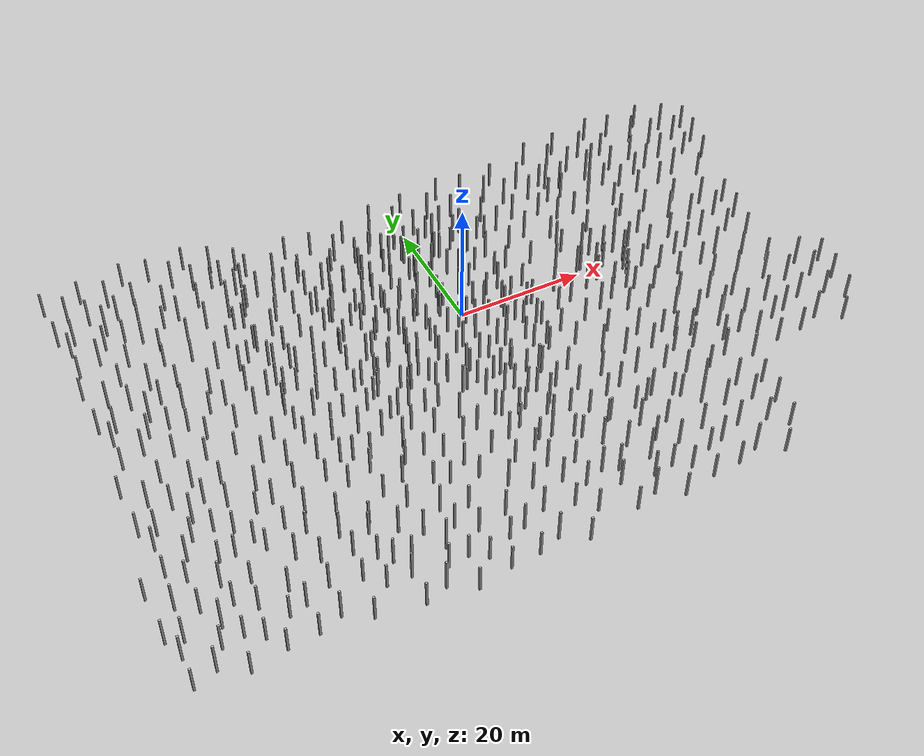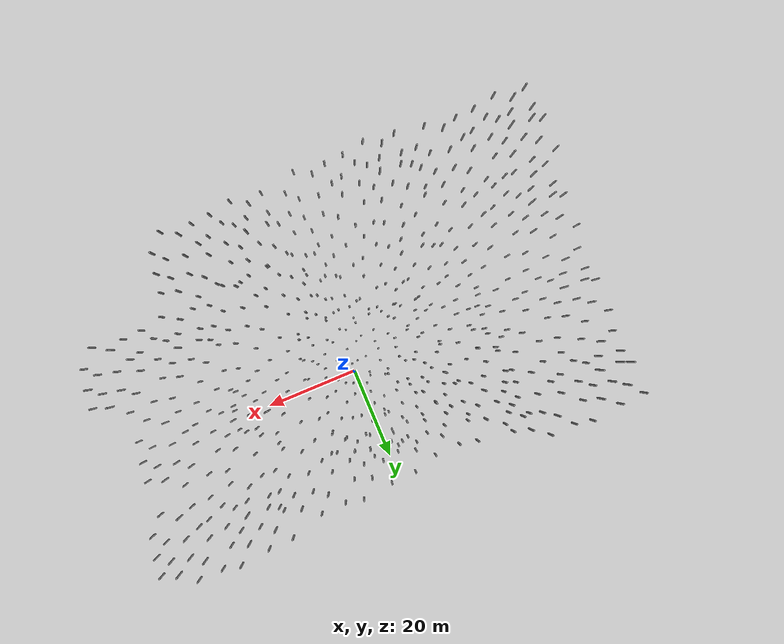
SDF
<sdf version="1.6">
 <world name="world">
  <model name="ground_plane">
   <static>1</static>
   <link name="link">
    <collision name="collision">
     <geometry><plane><normal>0 0 1</normal><size>100 100</size></plane></geometry>
     <surface><friction><ode><mu>100</mu><mu2>50</mu2></ode></friction></surface>
    </collision>
    <velocity_decay><linear>0</linear><angular>0</angular></velocity_decay>
   </link>
  </model>
  <model name="pillars">
   <pose>-3.82158 -2.82314 0 0 -0 0</pose>
   <static>1</static>
   <link name="body">
    <visual name="visual">
     <pose>0 0 -0.001 0 -0 0</pose>
     <geometry><mesh><uri>model://pillars/pillars4.dae</uri><scale>1 1 1</scale></mesh></geometry>
    </visual>
    <collision name="pillars">
     <pose>0 0 -0.001 0 -0 0</pose>
     <geometry><mesh><uri>model://pillars/pillars4.dae</uri><scale>1 1 1</scale></mesh></geometry>
    </collision>
    <velocity_decay><linear>0</linear><angular>0</angular></velocity_decay>
   </link>
  </model>
  <physics name="default_physics" default="0" type="ode">
   <max_step_size>0.001</max_step_size>
   <real_time_factor>1</real_time_factor>
   <real_time_update_rate>1000</real_time_update_rate>
  </physics>
  <scene><ambient>0.4 0.4 0.4 1</ambient><background>0.7 0.7 0.7 1</background><shadows>1</shadows></scene>
  <spherical_coordinates>
   <surface_model>EARTH_WGS84</surface_model>
   <latitude_deg>0</latitude_deg>
   <longitude_deg>0</longitude_deg>
   <elevation>0</elevation>
   <heading_deg>0</heading_deg>
  </spherical_coordinates>
  <gravity>0 0 -9.8</gravity>
  <magnetic_field>6e-06 2.3e-05 -4.2e-05</magnetic_field>
  <atmosphere type="adiabatic"/>
  <light name="user_point_light_0" type="point">
   <pose>7.28336 -5.6677 1 0 -0 0</pose>
   <diffuse>0.5 0.5 0.5 1</diffuse>
   <specular>0.1 0.1 0.1 1</specular>
   <attenuation>
    <range>20</range>
    <constant>0.5</constant>
    <linear>0.01</linear>
    <quadratic>0.001</quadratic>
   </attenuation>
   <cast_shadows>0</cast_shadows>
   <direction>0 0 -1</direction>
  </light>
  <light name="user_point_light_0_clone" type="point">
   <pose>22.1998 -4.89933 8 0 -0 0</pose>
   <diffuse>0.498039 0.498039 0.498039 1</diffuse>
   <specular>0.0980392 0.0980392 0.0980392 1</specular>
   <direction>0 0 -1</direction>
   <attenuation>
    <range>20</range>
    <constant>0.5</constant>
    <linear>0.01</linear>
    <quadratic>0.001</quadratic>
   </attenuation>
  </light>
  <light name="user_point_light_0_clone_0" type="point">
   <pose>26.1259 -10.288 8 0 -0 0</pose>
   <diffuse>0.498039 0.498039 0.498039 1</diffuse>
   <specular>0.0980392 0.0980392 0.0980392 1</specular>
   <direction>0 0 -1</direction>
   <attenuation>
    <range>20</range>
    <constant>0.5</constant>
    <linear>0.01</linear>
    <quadratic>0.001</quadratic>
   </attenuation>
  </light>
  <model name="pillars_clone">
   <static>1</static>
   <link name="body">
    <visual name="visual">
     <pose>0 0 -0.001 0 -0 0</pose>
     <geometry><mesh><uri>model://pillars/pillars4.dae</uri><scale>1 1 1</scale></mesh></geometry>
    </visual>
    <collision name="pillars">
     <pose>0 0 -0.001 0 -0 0</pose>
     <geometry><mesh><uri>model://pillars/pillars4.dae</uri><scale>1 1 1</scale></mesh></geometry>
    </collision>
    <velocity_decay><linear>0</linear><angular>0</angular></velocity_decay>
   </link>
   <pose>-34.2803 -2.76458 0 0 -0 0</pose>
  </model>
  <model name="pillars_clone_0">
   <static>1</static>
   <link name="body">
    <visual name="visual">
     <pose>0 0 -0.001 0 -0 0</pose>
     <geometry><mesh><uri>model://pillars/pillars4.dae</uri><scale>1 1 1</scale></mesh></geometry>
    </visual>
    <collision name="pillars">
     <pose>0 0 -0.001 0 -0 0</pose>
     <geometry><mesh><uri>model://pillars/pillars4.dae</uri><scale>1 1 1</scale></mesh></geometry>
    </collision>
    <velocity_decay><linear>0</linear><angular>0</angular></velocity_decay>
   </link>
   <pose>-6.06615 16.82 0 0 -0 0</pose>
  </model>
  <model name="pillars_clone_1">
   <static>1</static>
   <link name="body">
    <visual name="visual">
     <pose>0 0 -0.001 0 -0 0</pose>
     <geometry><mesh><uri>model://pillars/pillars4.dae</uri><scale>1 1 1</scale></mesh></geometry>
    </visual>
    <collision name="pillars">
     <pose>0 0 -0.001 0 -0 0</pose>
     <geometry><mesh><uri>model://pillars/pillars4.dae</uri><scale>1 1 1</scale></mesh></geometry>
    </collision>
    <velocity_decay><linear>0</linear><angular>0</angular></velocity_decay>
   </link>
   <pose>-21.2617 9.81281 0 0 -0 0</pose>
  </model>
  <model name="pillars_clone_2">
   <static>1</static>
   <link name="body">
    <visual name="visual">
     <pose>0 0 -0.001 0 -0 0</pose>
     <geometry><mesh><uri>model://pillars/pillars4.dae</uri><scale>1 1 1</scale></mesh></geometry>
    </visual>
    <collision name="pillars">
     <pose>0 0 -0.001 0 -0 0</pose>
     <geometry><mesh><uri>model://pillars/pillars4.dae</uri><scale>1 1 1</scale></mesh></geometry>
    </collision>
    <velocity_decay><linear>0</linear><angular>0</angular></velocity_decay>
   </link>
   <pose>-21.6187 -7.07896 0 0 -0 0</pose>
  </model>
  <model name="pillars_clone_3">
   <static>1</static>
   <link name="body">
    <visual name="visual">
     <pose>0 0 -0.001 0 -0 0</pose>
     <geometry><mesh><uri>model://pillars/pillars4.dae</uri><scale>1 1 1</scale></mesh></geometry>
    </visual>
    <collision name="pillars">
     <pose>0 0 -0.001 0 -0 0</pose>
     <geometry><mesh><uri>model://pillars/pillars4.dae</uri><scale>1 1 1</scale></mesh></geometry>
    </collision>
    <velocity_decay><linear>0</linear><angular>0</angular></velocity_decay>
   </link>
   <pose>-6.60813 -21.376 0 0 -0 0</pose>
  </model>
  <model name="pillars_clone_clone">
   <static>1</static>
   <link name="body">
    <visual name="visual">
     <pose>0 0 -0.001 0 -0 0</pose>
     <geometry><mesh><uri>model://pillars/pillars4.dae</uri><scale>1 1 1</scale></mesh></geometry>
    </visual>
    <collision name="pillars">
     <pose>0 0 -0.001 0 -0 0</pose>
     <geometry><mesh><uri>model://pillars/pillars4.dae</uri><scale>1 1 1</scale></mesh></geometry>
    </collision>
    <velocity_decay><linear>0</linear><angular>0</angular></velocity_decay>
   </link>
   <pose>-28.486 -19.3533 0 0 -0 0</pose>
  </model>
  <model name="pillars_clone_clone_0">
   <static>1</static>
   <link name="body">
    <visual name="visual">
     <pose>0 0 -0.001 0 -0 0</pose>
     <geometry><mesh><uri>model://pillars/pillars4.dae</uri><scale>1 1 1</scale></mesh></geometry>
    </visual>
    <collision name="pillars">
     <pose>0 0 -0.001 0 -0 0</pose>
     <geometry><mesh><uri>model://pillars/pillars4.dae</uri><scale>1 1 1</scale></mesh></geometry>
    </collision>
    <velocity_decay><linear>0</linear><angular>0</angular></velocity_decay>
   </link>
   <pose>-33.4544 14.6189 0 0 -0 0</pose>
  </model>
  <model name="pillars_clone_clone_1">
   <static>1</static>
   <link name="body">
    <visual name="visual">
     <pose>0 0 -0.001 0 -0 0</pose>
     <geometry><mesh><uri>model://pillars/pillars4.dae</uri><scale>1 1 1</scale></mesh></geometry>
    </visual>
    <collision name="pillars">
     <pose>0 0 -0.001 0 -0 0</pose>
     <geometry><mesh><uri>model://pillars/pillars4.dae</uri><scale>1 1 1</scale></mesh></geometry>
    </collision>
    <velocity_decay><linear>0</linear><angular>0</angular></velocity_decay>
   </link>
   <pose>-31.0064 -37.4208 0 0 -0 0</pose>
  </model>
  <model name="pillars_clone_clone_2">
   <static>1</static>
   <link name="body">
    <visual name="visual">
     <pose>0 0 -0.001 0 -0 0</pose>
     <geometry><mesh><uri>model://pillars/pillars4.dae</uri><scale>1 1 1</scale></mesh></geometry>
    </visual>
    <collision name="pillars">
     <pose>0 0 -0.001 0 -0 0</pose>
     <geometry><mesh><uri>model://pillars/pillars4.dae</uri><scale>1 1 1</scale></mesh></geometry>
    </collision>
    <velocity_decay><linear>0</linear><angular>0</angular></velocity_decay>
   </link>
   <pose>0.530002 -36.5085 0 0 -0 0</pose>
  </model>
  <model name="pillars_clone_clone_3">
   <static>1</static>
   <link name="body">
    <visual name="visual">
     <pose>0 0 -0.001 0 -0 0</pose>
     <geometry><mesh><uri>model://pillars/pillars4.dae</uri><scale>1 1 1</scale></mesh></geometry>
    </visual>
    <collision name="pillars">
     <pose>0 0 -0.001 0 -0 0</pose>
     <geometry><mesh><uri>model://pillars/pillars4.dae</uri><scale>1 1 1</scale></mesh></geometry>
    </collision>
    <velocity_decay><linear>0</linear><angular>0</angular></velocity_decay>
   </link>
   <pose>-58.626 -18.654 0 0 -0 0</pose>
  </model>
  <model name="pillars_clone_clone_4">
   <static>1</static>
   <link name="body">
    <visual name="visual">
     <pose>0 0 -0.001 0 -0 0</pose>
     <geometry><mesh><uri>model://pillars/pillars4.dae</uri><scale>1 1 1</scale></mesh></geometry>
    </visual>
    <collision name="pillars">
     <pose>0 0 -0.001 0 -0 0</pose>
     <geometry><mesh><uri>model://pillars/pillars4.dae</uri><scale>1 1 1</scale></mesh></geometry>
    </collision>
    <velocity_decay><linear>0</linear><angular>0</angular></velocity_decay>
   </link>
   <pose>-60.9748 -35.7265 0 0 -0 0</pose>
  </model>
  <model name="pillars_clone_clone_5">
   <static>1</static>
   <link name="body">
    <visual name="visual">
     <pose>0 0 -0.001 0 -0 0</pose>
     <geometry><mesh><uri>model://pillars/pillars4.dae</uri><scale>1 1 1</scale></mesh></geometry>
    </visual>
    <collision name="pillars">
     <pose>0 0 -0.001 0 -0 0</pose>
     <geometry><mesh><uri>model://pillars/pillars4.dae</uri><scale>1 1 1</scale></mesh></geometry>
    </collision>
    <velocity_decay><linear>0</linear><angular>0</angular></velocity_decay>
   </link>
   <pose>-57.8521 0.894758 0 0 -0 0</pose>
  </model>
  <model name="pillars_clone_clone_6">
   <static>1</static>
   <link name="body">
    <visual name="visual">
     <pose>0 0 -0.001 0 -0 0</pose>
     <geometry><mesh><uri>model://pillars/pillars4.dae</uri><scale>1 1 1</scale></mesh></geometry>
    </visual>
    <collision name="pillars">
     <pose>0 0 -0.001 0 -0 0</pose>
     <geometry><mesh><uri>model://pillars/pillars4.dae</uri><scale>1 1 1</scale></mesh></geometry>
    </collision>
    <velocity_decay><linear>0</linear><angular>0</angular></velocity_decay>
   </link>
   <pose>-57.9867 20.1831 0 0 -0 0</pose>
  </model>
  <model name="pillars_clone_clone_7">
   <static>1</static>
   <link name="body">
    <visual name="visual">
     <pose>0 0 -0.001 0 -0 0</pose>
     <geometry><mesh><uri>model://pillars/pillars4.dae</uri><scale>1 1 1</scale></mesh></geometry>
    </visual>
    <collision name="pillars">
     <pose>0 0 -0.001 0 -0 0</pose>
     <geometry><mesh><uri>model://pillars/pillars4.dae</uri><scale>1 1 1</scale></mesh></geometry>
    </collision>
    <velocity_decay><linear>0</linear><angular>0</angular></velocity_decay>
   </link>
   <pose>23.643 -19.1108 0 0 -0 0</pose>
  </model>
  <model name="pillars_clone_clone_8">
   <static>1</static>
   <link name="body">
    <visual name="visual">
     <pose>0 0 -0.001 0 -0 0</pose>
     <geometry><mesh><uri>model://pillars/pillars4.dae</uri><scale>1 1 1</scale></mesh></geometry>
    </visual>
    <collision name="pillars">
     <pose>0 0 -0.001 0 -0 0</pose>
     <geometry><mesh><uri>model://pillars/pillars4.dae</uri><scale>1 1 1</scale></mesh></geometry>
    </collision>
    <velocity_decay><linear>0</linear><angular>0</angular></velocity_decay>
   </link>
   <pose>18.6242 -0.178577 0 0 -0 0</pose>
  </model>
  <model name="pillars_clone_clone_9">
   <static>1</static>
   <link name="body">
    <visual name="visual">
     <pose>0 0 -0.001 0 -0 0</pose>
     <geometry><mesh><uri>model://pillars/pillars4.dae</uri><scale>1 1 1</scale></mesh></geometry>
    </visual>
    <collision name="pillars">
     <pose>0 0 -0.001 0 -0 0</pose>
     <geometry><mesh><uri>model://pillars/pillars4.dae</uri><scale>1 1 1</scale></mesh></geometry>
    </collision>
    <velocity_decay><linear>0</linear><angular>0</angular></velocity_decay>
   </link>
   <pose>23.643 19.7315 0 0 -0 0</pose>
  </model>
 </world>
</sdf>
